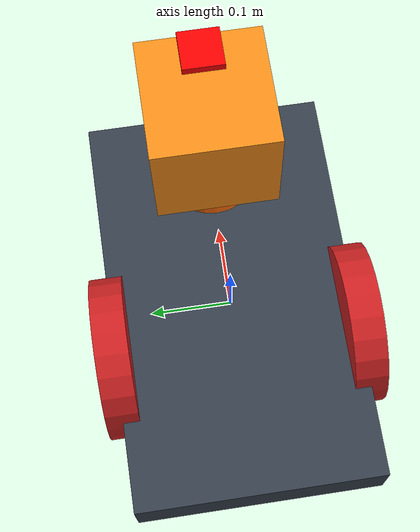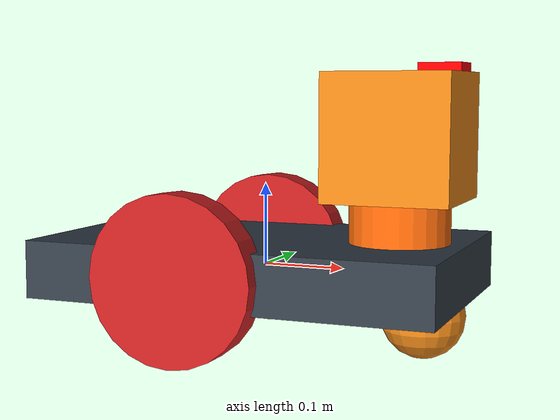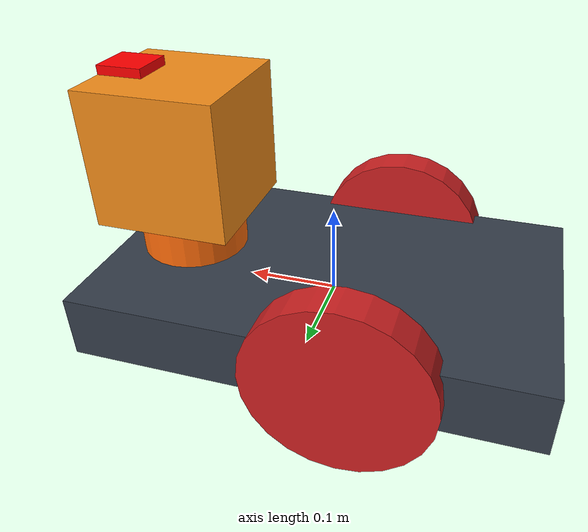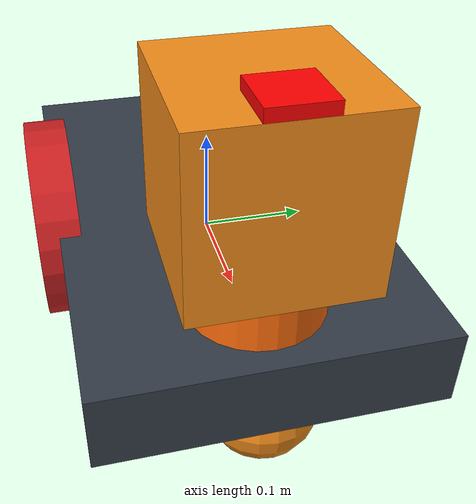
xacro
<?xml version="1.0"?>
<robot xmlns:xacro="http://www.ros.org/wiki/xacro" name="robot_xacro">
<xacro:include filename="$(find exp_assignment2)/urdf/robot.gazebo"/>

	<xacro:property name="length_wheel" value="0.04" />
	<xacro:property name="radius_wheel" value="0.1" />

	<xacro:macro name="default_inertial" params="mass">
               <inertial>
                       <mass value="${mass}" />
                       <origin rpy="0 1.5707 1.5707" xyz="0 0 0"/>
                       <inertia ixx="0.000526666666667" ixy="0" ixz="0" iyy="0.000526666666667" iyz="0" izz="0.001"/>
               </inertial>
	</xacro:macro>

    <xacro:macro name="wheel_geometry">
		<geometry>
       			<cylinder length="${length_wheel}" radius="${radius_wheel}"/>
     	</geometry>
	</xacro:macro>

    <material name="black">
    <color rgba="0.0 0.0 0.0 1.0"/>
  </material>
  <material name="blue">
    <color rgba="0.203125 0.23828125 0.28515625 1.0"/>
  </material>
  <material name="green">
    <color rgba="0.0 0.8 0.0 1.0"/>
  </material>
  <material name="grey">
    <color rgba="0.2 0.2 0.2 1.0"/>
  </material>
  <material name="orange">
    <color rgba="1.0 0.423529411765 0.0392156862745 1.0"/>
  </material>
  <material name="brown">
    <color rgba="0.870588235294 0.811764705882 0.764705882353 1.0"/>
  </material>
  <material name="red">
    <color rgba="0.80078125 0.12890625 0.1328125 1.0"/>
  </material>
  <material name="white">
    <color rgba="1.0 1.0 1.0 1.0"/>
  </material>

	  <link name="link_chassis">
    <!-- pose and inertial -->
    <pose>0 0 0.1 0 0 0</pose>
    <inertial>
      <mass value="5"/>
      <origin rpy="0 0 0" xyz="0 0 0.1"/>
      <inertia ixx="0.0395416666667" ixy="0" ixz="0" iyy="0.106208333333" iyz="0" izz="0.106208333333"/>
    </inertial>
    <!-- body -->
    <collision name="collision_chassis">
      <geometry>
        <box size="0.5 0.3 0.07"/>
      </geometry>
    </collision>
    <visual>
      <origin rpy="0 0 0" xyz="0 0 0"/>
      <geometry>
        <box size="0.5 0.3 0.07"/>
      </geometry>
      <material name="blue"/>
    </visual>
    <!-- caster front -->
    <collision name="caster_front_collision">
      <origin rpy=" 0 0 0" xyz="0.35 0 -0.05"/>
      <geometry>
        <sphere radius="0.05"/>
      </geometry>
    </collision>
    <visual name="caster_front_visual">
      <origin rpy=" 0 0 0" xyz="0.2 0 -0.05"/>
      <geometry>
        <sphere radius="0.05"/>
      </geometry>
    </visual>
  </link>

   <link name="link_right_wheel">
    <xacro:default_inertial mass="0.2"/>
    <collision name="link_right_wheel_collision">
      <origin rpy="0 1.5707 1.5707" xyz="0 0 0"/>
      <xacro:wheel_geometry />
    </collision>
    <visual name="link_right_wheel_visual">
      <origin rpy="0 1.5707 1.5707" xyz="0 0 0"/>
      <xacro:wheel_geometry />
      <material name="red"/>
    </visual>
  </link>

   <link name="link_left_wheel">
    <xacro:default_inertial mass="0.2"/>
    <collision name="link_left_wheel_collision">
      <origin rpy="0 1.5707 1.5707" xyz="0 0 0"/>
      <xacro:wheel_geometry />
    </collision>
    <visual name="link_left_wheel_visual">
      <origin rpy="0 1.5707 1.5707" xyz="0 0 0"/>
      <xacro:wheel_geometry />
      <material name="red"/>
    </visual>
  </link>

  <joint name="joint_right_wheel" type="continuous">
    <origin rpy="0 0 0" xyz="-0.05 0.15 0"/>
    <child link="link_right_wheel"/>
    <parent link="link_chassis"/>
    <axis rpy="0 0 0" xyz="0 1 0"/>
    <limit effort="10000" velocity="1000"/>
    <joint_properties damping="1.0" friction="1.0"/>
  </joint>

  <joint name="joint_left_wheel" type="continuous">
    <origin rpy="0 0 0" xyz="-0.05 -0.15 0"/>
    <child link="link_left_wheel"/>
    <parent link="link_chassis"/>
    <axis rpy="0 0 0" xyz="0 1 0"/>
    <limit effort="10000" velocity="1000"/>
    <joint_properties damping="1.0" friction="1.0"/>
  </joint>

<link name="neck_link">
  	<inertial>
  		<mass value="0.025"/>
  		<origin xyz="0 0 0" rpy="0 0 0" />
  		<inertia ixx="0.000010279" ixy="0" ixz="0" iyy="0.000010279" iyz="0" izz="0.000007225"/>
  	</inertial>
  	<collision>
  	  <origin xyz="0 0 0.025" rpy="0 0 0"/>
      <geometry>
        <cylinder radius="0.04" length="0.05"/>
      </geometry>
  	</collision>
  	<visual>
  	  <origin xyz="0 0 0.025" rpy="0 0 0"/>
      <geometry>
        <cylinder radius="0.06" length="0.05"/>
      </geometry>
      <material name="orange" />
  	</visual>
</link>

 <joint name="neck_joint" type="revolute">
	<axis xyz="0 0 1"/>
  	<limit effort="1000.0" lower="0" upper="6.28" velocity="0.2"/>
  	<origin rpy="0 0 0" xyz="0.17 0 0.035"/>
  	<parent link="link_chassis"/>
  	<child link="neck_link"/>
  </joint>

 <link name="head_link">
  	<inertial>
  		<mass value="0.1"/>
  		<origin xyz="0 0 0" rpy="0 0 0" />
  		<inertia ixx="0.0000416666667" ixy="0" ixz="0" iyy="0.0000416666667" iyz="0" izz="0.0000416666667"/>
  	</inertial>
  	<collision>
  	  <origin xyz="0 0 0.075" rpy="0 0 0"/>
      <geometry>
        <box size="0.15 0.15 0.15"/>
      </geometry>
  	</collision>
  	<visual>
  	  <origin xyz="0 0 0.075" rpy="0 0 0"/>
      <geometry>
        <box size="0.15 0.15 0.15"/>
      </geometry>
  	</visual>
  </link>

  <joint name="head_joint" type="fixed">
  	<origin rpy="0 0 0" xyz="0 0 0.05"/>
  	<parent link="neck_link"/>
  	<child link="head_link"/>
  </joint>

  <link name="camera_link">
	    <collision>
	      <origin xyz="0 0 0.005" rpy="0 0 0"/>
	      <geometry>
		<box size="0.05 0.05 0.01"/>
	      </geometry>
	    </collision>
	    <visual>
	      <origin xyz="0 0 0.005" rpy="0 0 0"/>
	      <geometry>
		<box size="0.05 0.05 0.01"/>
	      </geometry>
	      <material name="blue">
		<color rgba="1 0 0 1"/>
	      </material>
	    </visual>
	    <inertial>
	      <mass value="1e-5" />
	      <origin xyz="0 0 0.005" rpy="0 0 0"/>
	      <inertia ixx="1e-6" ixy="0" ixz="0" iyy="1e-6" iyz="0" izz="1e-6" />
	    </inertial>
  </link>

  <joint name="camera_joint" type="fixed">
	    <axis xyz="0 1 0" />
	    <origin xyz="0.05 0 0.15" rpy="0 0 0"/>
	    <parent link="head_link"/>
	    <child link="camera_link"/>
	 </joint>

<transmission name="neck_joint_trans">
	<type>transmission_interface/SimpleTransmission</type>
	<joint name="neck_joint">
		<hardwareInterface>hardware_interface/EffortJointInterface</hardwareInterface>
	</joint>
	<actuator name="motor1">
		<hardwareInterface>hardware_interface/EffortJointInterface</hardwareInterface>
		<mechanicalInterface>1</mechanicalInterface>
	</actuator>
</transmission>

</robot>
